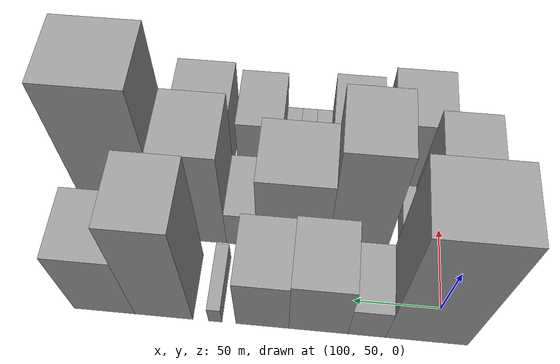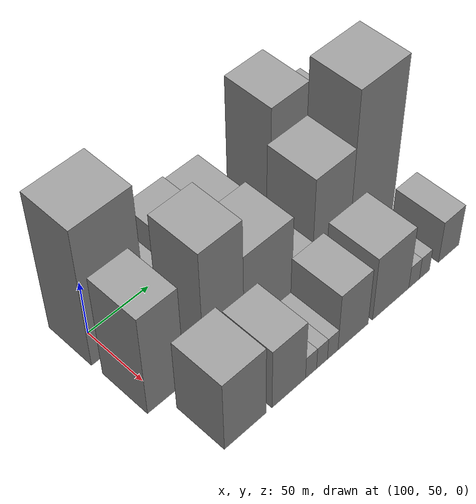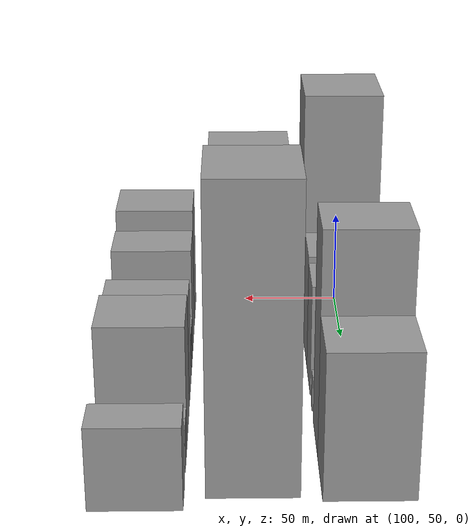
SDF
<sdf version="1.6">
 <world name="default">
  <model name="building_16">
   <static>1</static>
   <pose>100.0000 58.5204 0 0.000000 0.000000 0.000000</pose>
   <link name="link">
    <pose>0 0 63.00 0 0 0</pose>
    <collision name="collision"><geometry><box><size>40.0000 45.3403 126.0000</size></box></geometry></collision>
    <visual name="visual">
     <cast_shadows>0</cast_shadows>
     <geometry><box><size>40.0000 45.3403 126.0000</size></box></geometry>
     <material>
      <script>
       <uri>model://grey_wall/materials/scripts</uri>
       <uri>model://grey_wall/materials/textures</uri>
       <name>vrc/grey_wall</name>
      </script>
     </material>
    </visual>
   </link>
  </model>
  <model name="building_17">
   <static>1</static>
   <pose>100.0000 91.7804 0 0.000000 0.000000 0.000000</pose>
   <link name="link">
    <pose>0 0 18.00 0 0 0</pose>
    <collision name="collision"><geometry><box><size>40.0000 21.1796 36.0000</size></box></geometry></collision>
    <visual name="visual">
     <cast_shadows>0</cast_shadows>
     <geometry><box><size>40.0000 21.1796 36.0000</size></box></geometry>
     <material>
      <script>
       <uri>model://grey_wall/materials/scripts</uri>
       <uri>model://grey_wall/materials/textures</uri>
       <name>vrc/grey_wall</name>
      </script>
     </material>
    </visual>
   </link>
  </model>
  <model name="building_18">
   <static>1</static>
   <pose>100.0000 118.8908 0 0.000000 0.000000 0.000000</pose>
   <link name="link">
    <pose>0 0 30.00 0 0 0</pose>
    <collision name="collision"><geometry><box><size>40.0000 33.0412 60.0000</size></box></geometry></collision>
    <visual name="visual">
     <cast_shadows>0</cast_shadows>
     <geometry><box><size>40.0000 33.0412 60.0000</size></box></geometry>
     <material>
      <script>
       <uri>model://grey_wall/materials/scripts</uri>
       <uri>model://grey_wall/materials/textures</uri>
       <name>vrc/grey_wall</name>
      </script>
     </material>
    </visual>
   </link>
  </model>
  <model name="building_19">
   <static>1</static>
   <pose>100.0000 150.2969 0 0.000000 0.000000 0.000000</pose>
   <link name="link">
    <pose>0 0 28.50 0 0 0</pose>
    <collision name="collision"><geometry><box><size>40.0000 29.7710 57.0000</size></box></geometry></collision>
    <visual name="visual">
     <cast_shadows>0</cast_shadows>
     <geometry><box><size>40.0000 29.7710 57.0000</size></box></geometry>
     <material>
      <script>
       <uri>model://grey_wall/materials/scripts</uri>
       <uri>model://grey_wall/materials/textures</uri>
       <name>vrc/grey_wall</name>
      </script>
     </material>
    </visual>
   </link>
  </model>
  <model name="building_20">
   <static>1</static>
   <pose>100.0000 176.9472 0 0.000000 0.000000 0.000000</pose>
   <link name="link">
    <pose>0 0 9.00 0 0 0</pose>
    <collision name="collision"><geometry><box><size>40.0000 7.5295 18.0000</size></box></geometry></collision>
    <visual name="visual">
     <cast_shadows>0</cast_shadows>
     <geometry><box><size>40.0000 7.5295 18.0000</size></box></geometry>
     <material>
      <script>
       <uri>model://grey_wall/materials/scripts</uri>
       <uri>model://grey_wall/materials/textures</uri>
       <name>vrc/grey_wall</name>
      </script>
     </material>
    </visual>
   </link>
  </model>
  <model name="building_21">
   <static>1</static>
   <pose>100.0000 206.3508 0 0.000000 0.000000 0.000000</pose>
   <link name="link">
    <pose>0 0 54.00 0 0 0</pose>
    <collision name="collision"><geometry><box><size>40.0000 33.2777 108.0000</size></box></geometry></collision>
    <visual name="visual">
     <cast_shadows>0</cast_shadows>
     <geometry><box><size>40.0000 33.2777 108.0000</size></box></geometry>
     <material>
      <script>
       <uri>model://grey_wall/materials/scripts</uri>
       <uri>model://grey_wall/materials/textures</uri>
       <name>vrc/grey_wall</name>
      </script>
     </material>
    </visual>
   </link>
  </model>
  <model name="building_22">
   <static>1</static>
   <pose>100.0000 240.4741 0 0.000000 0.000000 0.000000</pose>
   <link name="link">
    <pose>0 0 34.50 0 0 0</pose>
    <collision name="collision"><geometry><box><size>40.0000 34.9690 69.0000</size></box></geometry></collision>
    <visual name="visual">
     <cast_shadows>0</cast_shadows>
     <geometry><box><size>40.0000 34.9690 69.0000</size></box></geometry>
     <material>
      <script>
       <uri>model://grey_wall/materials/scripts</uri>
       <uri>model://grey_wall/materials/textures</uri>
       <name>vrc/grey_wall</name>
      </script>
     </material>
    </visual>
   </link>
  </model>
  <model name="building_50">
   <static>1</static>
   <pose>149.0000 51.7305 0 0.000000 0.000000 0.000000</pose>
   <link name="link">
    <pose>0 0 46.50 0 0 0</pose>
    <collision name="collision"><geometry><box><size>40.0000 29.9406 93.0000</size></box></geometry></collision>
    <visual name="visual">
     <cast_shadows>0</cast_shadows>
     <geometry><box><size>40.0000 29.9406 93.0000</size></box></geometry>
     <material>
      <script>
       <uri>model://grey_wall/materials/scripts</uri>
       <uri>model://grey_wall/materials/textures</uri>
       <name>vrc/grey_wall</name>
      </script>
     </material>
    </visual>
   </link>
  </model>
  <model name="building_51">
   <static>1</static>
   <pose>149.0000 70.6586 0 0.000000 0.000000 0.000000</pose>
   <link name="link">
    <pose>0 0 9.00 0 0 0</pose>
    <collision name="collision"><geometry><box><size>40.0000 7.9157 18.0000</size></box></geometry></collision>
    <visual name="visual">
     <cast_shadows>0</cast_shadows>
     <geometry><box><size>40.0000 7.9157 18.0000</size></box></geometry>
     <material>
      <script>
       <uri>model://grey_wall/materials/scripts</uri>
       <uri>model://grey_wall/materials/textures</uri>
       <name>vrc/grey_wall</name>
      </script>
     </material>
    </visual>
   </link>
  </model>
  <model name="building_52">
   <static>1</static>
   <pose>149.0000 99.5877 0 0.000000 0.000000 0.000000</pose>
   <link name="link">
    <pose>0 0 54.00 0 0 0</pose>
    <collision name="collision"><geometry><box><size>40.0000 33.9426 108.0000</size></box></geometry></collision>
    <visual name="visual">
     <cast_shadows>0</cast_shadows>
     <geometry><box><size>40.0000 33.9426 108.0000</size></box></geometry>
     <material>
      <script>
       <uri>model://grey_wall/materials/scripts</uri>
       <uri>model://grey_wall/materials/textures</uri>
       <name>vrc/grey_wall</name>
      </script>
     </material>
    </visual>
   </link>
  </model>
  <model name="building_53">
   <static>1</static>
   <pose>149.0000 137.5816 0 0.000000 0.000000 0.000000</pose>
   <link name="link">
    <pose>0 0 37.50 0 0 0</pose>
    <collision name="collision"><geometry><box><size>40.0000 42.0452 75.0000</size></box></geometry></collision>
    <visual name="visual">
     <cast_shadows>0</cast_shadows>
     <geometry><box><size>40.0000 42.0452 75.0000</size></box></geometry>
     <material>
      <script>
       <uri>model://grey_wall/materials/scripts</uri>
       <uri>model://grey_wall/materials/textures</uri>
       <name>vrc/grey_wall</name>
      </script>
     </material>
    </visual>
   </link>
  </model>
  <model name="building_54">
   <static>1</static>
   <pose>149.0000 167.7839 0 0.000000 0.000000 0.000000</pose>
   <link name="link">
    <pose>0 0 18.00 0 0 0</pose>
    <collision name="collision"><geometry><box><size>40.0000 18.3594 36.0000</size></box></geometry></collision>
    <visual name="visual">
     <cast_shadows>0</cast_shadows>
     <geometry><box><size>40.0000 18.3594 36.0000</size></box></geometry>
     <material>
      <script>
       <uri>model://grey_wall/materials/scripts</uri>
       <uri>model://grey_wall/materials/textures</uri>
       <name>vrc/grey_wall</name>
      </script>
     </material>
    </visual>
   </link>
  </model>
  <model name="building_55">
   <static>1</static>
   <pose>149.0000 194.4452 0 0.000000 0.000000 0.000000</pose>
   <link name="link">
    <pose>0 0 46.50 0 0 0</pose>
    <collision name="collision"><geometry><box><size>40.0000 34.9633 93.0000</size></box></geometry></collision>
    <visual name="visual">
     <cast_shadows>0</cast_shadows>
     <geometry><box><size>40.0000 34.9633 93.0000</size></box></geometry>
     <material>
      <script>
       <uri>model://grey_wall/materials/scripts</uri>
       <uri>model://grey_wall/materials/textures</uri>
       <name>vrc/grey_wall</name>
      </script>
     </material>
    </visual>
   </link>
  </model>
  <model name="building_56">
   <static>1</static>
   <pose>149.0000 233.4893 0 0.000000 0.000000 0.000000</pose>
   <link name="link">
    <pose>0 0 70.50 0 0 0</pose>
    <collision name="collision"><geometry><box><size>40.0000 43.1250 141.0000</size></box></geometry></collision>
    <visual name="visual">
     <cast_shadows>0</cast_shadows>
     <geometry><box><size>40.0000 43.1250 141.0000</size></box></geometry>
     <material>
      <script>
       <uri>model://grey_wall/materials/scripts</uri>
       <uri>model://grey_wall/materials/textures</uri>
       <name>vrc/grey_wall</name>
      </script>
     </material>
    </visual>
   </link>
  </model>
  <model name="building_78">
   <static>1</static>
   <pose>198.0000 68.7022 0 0.000000 0.000000 0.000000</pose>
   <link name="link">
    <pose>0 0 33.00 0 0 0</pose>
    <collision name="collision"><geometry><box><size>40.0000 34.0608 66.0000</size></box></geometry></collision>
    <visual name="visual">
     <cast_shadows>0</cast_shadows>
     <geometry><box><size>40.0000 34.0608 66.0000</size></box></geometry>
     <material>
      <script>
       <uri>model://grey_wall/materials/scripts</uri>
       <uri>model://grey_wall/materials/textures</uri>
       <name>vrc/grey_wall</name>
      </script>
     </material>
    </visual>
   </link>
  </model>
  <model name="building_79">
   <static>1</static>
   <pose>198.0000 105.0487 0 0.000000 0.000000 0.000000</pose>
   <link name="link">
    <pose>0 0 28.50 0 0 0</pose>
    <collision name="collision"><geometry><box><size>40.0000 28.6322 57.0000</size></box></geometry></collision>
    <visual name="visual">
     <cast_shadows>0</cast_shadows>
     <geometry><box><size>40.0000 28.6322 57.0000</size></box></geometry>
     <material>
      <script>
       <uri>model://grey_wall/materials/scripts</uri>
       <uri>model://grey_wall/materials/textures</uri>
       <name>vrc/grey_wall</name>
      </script>
     </material>
    </visual>
   </link>
  </model>
  <model name="building_80">
   <static>1</static>
   <pose>198.0000 124.1916 0 0.000000 0.000000 0.000000</pose>
   <link name="link">
    <pose>0 0 10.50 0 0 0</pose>
    <collision name="collision"><geometry><box><size>40.0000 9.6536 21.0000</size></box></geometry></collision>
    <visual name="visual">
     <cast_shadows>0</cast_shadows>
     <geometry><box><size>40.0000 9.6536 21.0000</size></box></geometry>
     <material>
      <script>
       <uri>model://grey_wall/materials/scripts</uri>
       <uri>model://grey_wall/materials/textures</uri>
       <name>vrc/grey_wall</name>
      </script>
     </material>
    </visual>
   </link>
  </model>
  <model name="building_81">
   <static>1</static>
   <pose>198.0000 133.8055 0 0.000000 0.000000 0.000000</pose>
   <link name="link">
    <pose>0 0 10.50 0 0 0</pose>
    <collision name="collision"><geometry><box><size>40.0000 9.5743 21.0000</size></box></geometry></collision>
    <visual name="visual">
     <cast_shadows>0</cast_shadows>
     <geometry><box><size>40.0000 9.5743 21.0000</size></box></geometry>
     <material>
      <script>
       <uri>model://grey_wall/materials/scripts</uri>
       <uri>model://grey_wall/materials/textures</uri>
       <name>vrc/grey_wall</name>
      </script>
     </material>
    </visual>
   </link>
  </model>
  <model name="building_82">
   <static>1</static>
   <pose>198.0000 143.2926 0 0.000000 0.000000 0.000000</pose>
   <link name="link">
    <pose>0 0 10.50 0 0 0</pose>
    <collision name="collision"><geometry><box><size>40.0000 9.3997 21.0000</size></box></geometry></collision>
    <visual name="visual">
     <cast_shadows>0</cast_shadows>
     <geometry><box><size>40.0000 9.3997 21.0000</size></box></geometry>
     <material>
      <script>
       <uri>model://grey_wall/materials/scripts</uri>
       <uri>model://grey_wall/materials/textures</uri>
       <name>vrc/grey_wall</name>
      </script>
     </material>
    </visual>
   </link>
  </model>
  <model name="building_83">
   <static>1</static>
   <pose>198.0000 161.8234 0 0.000000 0.000000 0.000000</pose>
   <link name="link">
    <pose>0 0 27.00 0 0 0</pose>
    <collision name="collision"><geometry><box><size>40.0000 27.6619 54.0000</size></box></geometry></collision>
    <visual name="visual">
     <cast_shadows>0</cast_shadows>
     <geometry><box><size>40.0000 27.6619 54.0000</size></box></geometry>
     <material>
      <script>
       <uri>model://grey_wall/materials/scripts</uri>
       <uri>model://grey_wall/materials/textures</uri>
       <name>vrc/grey_wall</name>
      </script>
     </material>
    </visual>
   </link>
  </model>
  <model name="building_84">
   <static>1</static>
   <pose>198.0000 196.9028 0 0.000000 0.000000 0.000000</pose>
   <link name="link">
    <pose>0 0 30.00 0 0 0</pose>
    <collision name="collision"><geometry><box><size>40.0000 34.4970 60.0000</size></box></geometry></collision>
    <visual name="visual">
     <cast_shadows>0</cast_shadows>
     <geometry><box><size>40.0000 34.4970 60.0000</size></box></geometry>
     <material>
      <script>
       <uri>model://grey_wall/materials/scripts</uri>
       <uri>model://grey_wall/materials/textures</uri>
       <name>vrc/grey_wall</name>
      </script>
     </material>
    </visual>
   </link>
  </model>
  <model name="building_85">
   <static>1</static>
   <pose>198.0000 219.3138 0 0.000000 0.000000 0.000000</pose>
   <link name="link">
    <pose>0 0 10.50 0 0 0</pose>
    <collision name="collision"><geometry><box><size>40.0000 10.3251 21.0000</size></box></geometry></collision>
    <visual name="visual">
     <cast_shadows>0</cast_shadows>
     <geometry><box><size>40.0000 10.3251 21.0000</size></box></geometry>
     <material>
      <script>
       <uri>model://grey_wall/materials/scripts</uri>
       <uri>model://grey_wall/materials/textures</uri>
       <name>vrc/grey_wall</name>
      </script>
     </material>
    </visual>
   </link>
  </model>
  <model name="building_86">
   <static>1</static>
   <pose>198.0000 229.4878 0 0.000000 0.000000 0.000000</pose>
   <link name="link">
    <pose>0 0 10.50 0 0 0</pose>
    <collision name="collision"><geometry><box><size>40.0000 10.0229 21.0000</size></box></geometry></collision>
    <visual name="visual">
     <cast_shadows>0</cast_shadows>
     <geometry><box><size>40.0000 10.0229 21.0000</size></box></geometry>
     <material>
      <script>
       <uri>model://grey_wall/materials/scripts</uri>
       <uri>model://grey_wall/materials/textures</uri>
       <name>vrc/grey_wall</name>
      </script>
     </material>
    </visual>
   </link>
  </model>
  <model name="building_87">
   <static>1</static>
   <pose>198.0000 253.8025 0 0.000000 0.000000 0.000000</pose>
   <link name="link">
    <pose>0 0 19.50 0 0 0</pose>
    <collision name="collision"><geometry><box><size>40.0000 20.6064 39.0000</size></box></geometry></collision>
    <visual name="visual">
     <cast_shadows>0</cast_shadows>
     <geometry><box><size>40.0000 20.6064 39.0000</size></box></geometry>
     <material>
      <script>
       <uri>model://grey_wall/materials/scripts</uri>
       <uri>model://grey_wall/materials/textures</uri>
       <name>vrc/grey_wall</name>
      </script>
     </material>
    </visual>
   </link>
  </model>
 </world>
</sdf>
